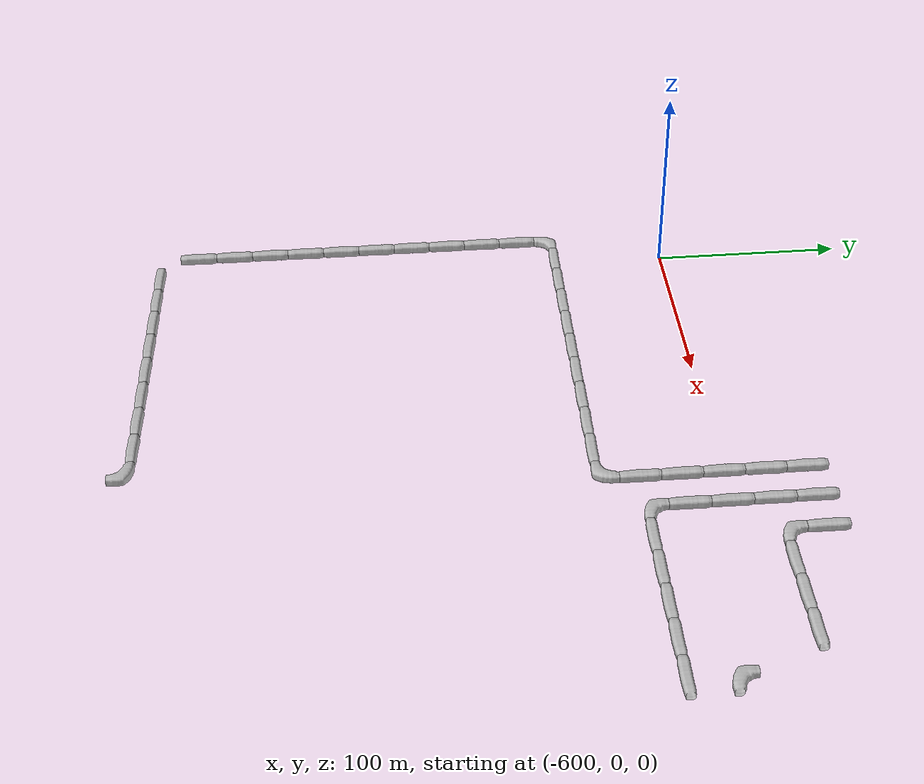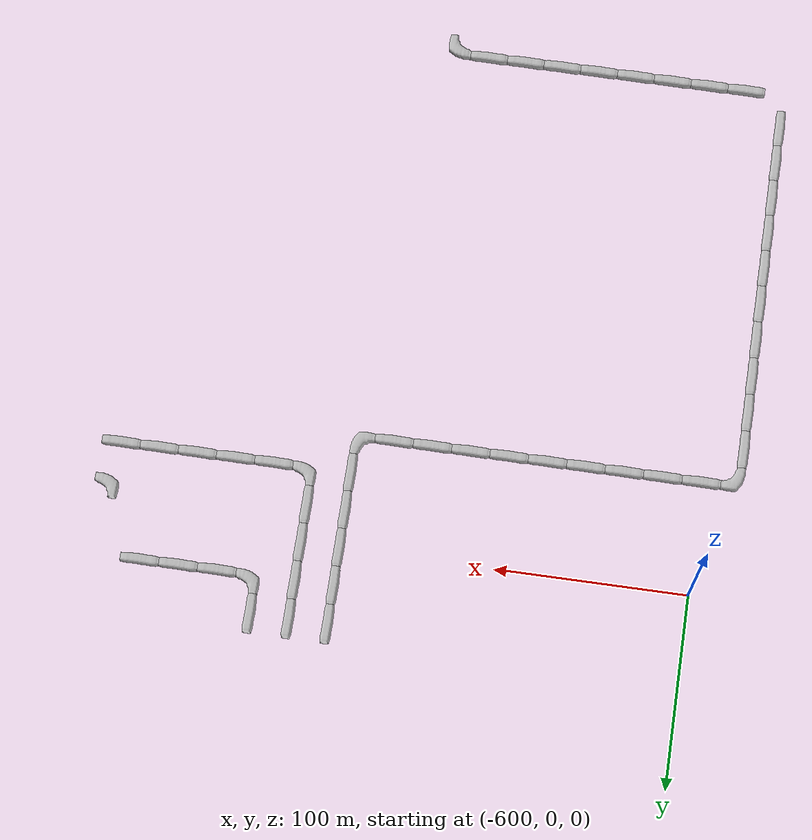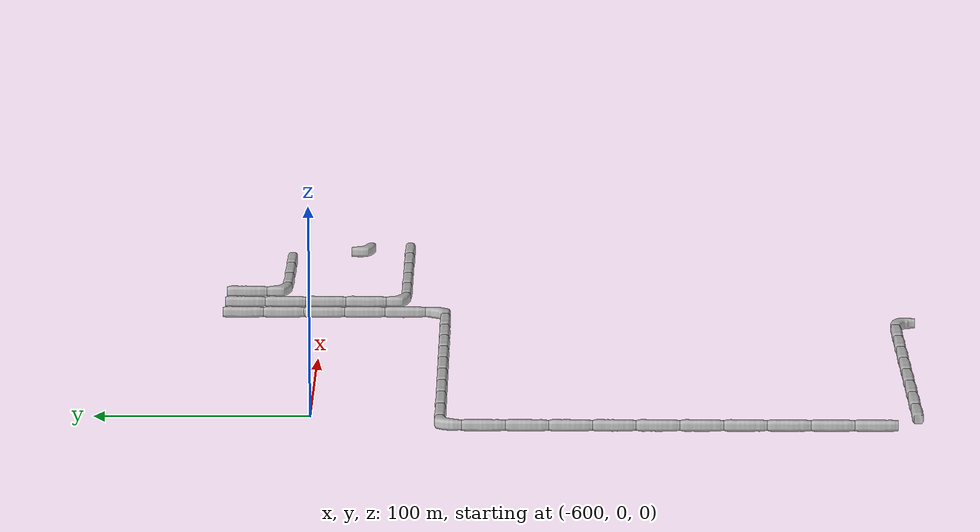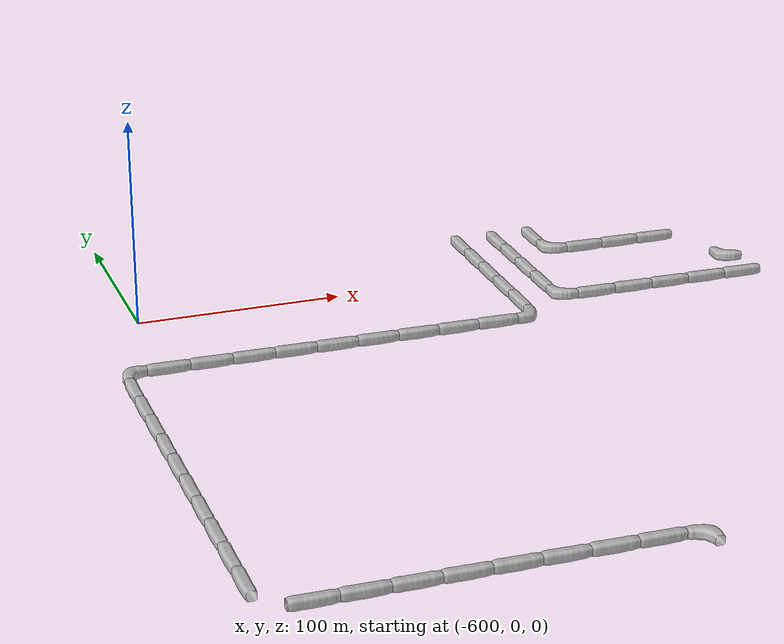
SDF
<sdf version="1.6">
 <world name="cave_16000_4">
  <include>
   <static>true</static>
   <name>cave_-22_-14</name>
   <pose>-440 -280 0 0 0 3.141592653589793</pose>
   <uri>model://cave_L_20m</uri>
  </include>
  <include>
   <static>true</static>
   <name>cave_-23_-14</name>
   <pose>-460 -280 0 0 0 1.5707963267948966</pose>
   <uri>model://cave_straight_20m</uri>
  </include>
  <include>
   <static>true</static>
   <name>cave_-24_-14</name>
   <pose>-480 -280 0 0 0 1.5707963267948966</pose>
   <uri>model://cave_straight_20m</uri>
  </include>
  <include>
   <static>true</static>
   <name>cave_-25_-14</name>
   <pose>-500 -280 0 0 0 1.5707963267948966</pose>
   <uri>model://cave_straight_20m</uri>
  </include>
  <include>
   <static>true</static>
   <name>cave_-26_-14</name>
   <pose>-520 -280 0 0 0 1.5707963267948966</pose>
   <uri>model://cave_straight_20m</uri>
  </include>
  <include>
   <static>true</static>
   <name>cave_-27_-14</name>
   <pose>-540 -280 0 0 0 1.5707963267948966</pose>
   <uri>model://cave_straight_20m</uri>
  </include>
  <include>
   <static>true</static>
   <name>cave_-28_-14</name>
   <pose>-560 -280 0 0 0 1.5707963267948966</pose>
   <uri>model://cave_straight_20m</uri>
  </include>
  <include>
   <static>true</static>
   <name>cave_-29_-14</name>
   <pose>-580 -280 0 0 0 1.5707963267948966</pose>
   <uri>model://cave_straight_20m</uri>
  </include>
  <include>
   <static>true</static>
   <name>cave_-30_-14</name>
   <pose>-600 -280 0 0 0 1.5707963267948966</pose>
   <uri>model://cave_straight_20m</uri>
  </include>
  <include>
   <static>true</static>
   <name>cave_-15_-1</name>
   <pose>-300 -20 0 0 0 0.0</pose>
   <uri>model://cave_L_20m</uri>
  </include>
  <include>
   <static>true</static>
   <name>cave_-19_2</name>
   <pose>-380 40 0 0 0 0.0</pose>
   <uri>model://cave_straight_20m</uri>
  </include>
  <include>
   <static>true</static>
   <name>cave_-19_1</name>
   <pose>-380 20 0 0 0 0.0</pose>
   <uri>model://cave_L_20m</uri>
  </include>
  <include>
   <static>true</static>
   <name>cave_-18_1</name>
   <pose>-360 20 0 0 0 1.5707963267948966</pose>
   <uri>model://cave_straight_20m</uri>
  </include>
  <include>
   <static>true</static>
   <name>cave_-17_1</name>
   <pose>-340 20 0 0 0 1.5707963267948966</pose>
   <uri>model://cave_straight_20m</uri>
  </include>
  <include>
   <static>true</static>
   <name>cave_-16_1</name>
   <pose>-320 20 0 0 0 1.5707963267948966</pose>
   <uri>model://cave_straight_20m</uri>
  </include>
  <include>
   <static>true</static>
   <name>cave_-20_2</name>
   <pose>-400 40 0 0 0 0.0</pose>
   <uri>model://cave_straight_20m</uri>
  </include>
  <include>
   <static>true</static>
   <name>cave_-20_1</name>
   <pose>-400 20 0 0 0 0.0</pose>
   <uri>model://cave_straight_20m</uri>
  </include>
  <include>
   <static>true</static>
   <name>cave_-20_0</name>
   <pose>-400 0 0 0 0 0.0</pose>
   <uri>model://cave_straight_20m</uri>
  </include>
  <include>
   <static>true</static>
   <name>cave_-20_-1</name>
   <pose>-400 -20 0 0 0 0.0</pose>
   <uri>model://cave_straight_20m</uri>
  </include>
  <include>
   <static>true</static>
   <name>cave_-20_-2</name>
   <pose>-400 -40 0 0 0 0.0</pose>
   <uri>model://cave_L_20m</uri>
  </include>
  <include>
   <static>true</static>
   <name>cave_-19_-2</name>
   <pose>-380 -40 0 0 0 1.5707963267948966</pose>
   <uri>model://cave_straight_20m</uri>
  </include>
  <include>
   <static>true</static>
   <name>cave_-18_-2</name>
   <pose>-360 -40 0 0 0 1.5707963267948966</pose>
   <uri>model://cave_straight_20m</uri>
  </include>
  <include>
   <static>true</static>
   <name>cave_-17_-2</name>
   <pose>-340 -40 0 0 0 1.5707963267948966</pose>
   <uri>model://cave_straight_20m</uri>
  </include>
  <include>
   <static>true</static>
   <name>cave_-16_-2</name>
   <pose>-320 -40 0 0 0 1.5707963267948966</pose>
   <uri>model://cave_straight_20m</uri>
  </include>
  <include>
   <static>true</static>
   <name>cave_-15_-2</name>
   <pose>-300 -40 0 0 0 1.5707963267948966</pose>
   <uri>model://cave_straight_20m</uri>
  </include>
  <include>
   <static>true</static>
   <name>cave_-21_2</name>
   <pose>-420 40 0 0 0 0.0</pose>
   <uri>model://cave_straight_20m</uri>
  </include>
  <include>
   <static>true</static>
   <name>cave_-21_1</name>
   <pose>-420 20 0 0 0 0.0</pose>
   <uri>model://cave_straight_20m</uri>
  </include>
  <include>
   <static>true</static>
   <name>cave_-21_0</name>
   <pose>-420 0 0 0 0 0.0</pose>
   <uri>model://cave_straight_20m</uri>
  </include>
  <include>
   <static>true</static>
   <name>cave_-21_-1</name>
   <pose>-420 -20 0 0 0 0.0</pose>
   <uri>model://cave_straight_20m</uri>
  </include>
  <include>
   <static>true</static>
   <name>cave_-21_-2</name>
   <pose>-420 -40 0 0 0 0.0</pose>
   <uri>model://cave_straight_20m</uri>
  </include>
  <include>
   <static>true</static>
   <name>cave_-21_-3</name>
   <pose>-420 -60 0 0 0 1.5707963267948966</pose>
   <uri>model://cave_L_20m</uri>
  </include>
  <include>
   <static>true</static>
   <name>cave_-22_-3</name>
   <pose>-440 -60 0 0 0 1.5707963267948966</pose>
   <uri>model://cave_straight_20m</uri>
  </include>
  <include>
   <static>true</static>
   <name>cave_-23_-3</name>
   <pose>-460 -60 0 0 0 1.5707963267948966</pose>
   <uri>model://cave_straight_20m</uri>
  </include>
  <include>
   <static>true</static>
   <name>cave_-24_-3</name>
   <pose>-480 -60 0 0 0 1.5707963267948966</pose>
   <uri>model://cave_straight_20m</uri>
  </include>
  <include>
   <static>true</static>
   <name>cave_-25_-3</name>
   <pose>-500 -60 0 0 0 1.5707963267948966</pose>
   <uri>model://cave_straight_20m</uri>
  </include>
  <include>
   <static>true</static>
   <name>cave_-26_-3</name>
   <pose>-520 -60 0 0 0 1.5707963267948966</pose>
   <uri>model://cave_straight_20m</uri>
  </include>
  <include>
   <static>true</static>
   <name>cave_-27_-3</name>
   <pose>-540 -60 0 0 0 1.5707963267948966</pose>
   <uri>model://cave_straight_20m</uri>
  </include>
  <include>
   <static>true</static>
   <name>cave_-28_-3</name>
   <pose>-560 -60 0 0 0 1.5707963267948966</pose>
   <uri>model://cave_straight_20m</uri>
  </include>
  <include>
   <static>true</static>
   <name>cave_-29_-3</name>
   <pose>-580 -60 0 0 0 1.5707963267948966</pose>
   <uri>model://cave_straight_20m</uri>
  </include>
  <include>
   <static>true</static>
   <name>cave_-30_-3</name>
   <pose>-600 -60 0 0 0 1.5707963267948966</pose>
   <uri>model://cave_straight_20m</uri>
  </include>
  <include>
   <static>true</static>
   <name>cave_-31_-3</name>
   <pose>-620 -60 0 0 0 -1.5707963267948966</pose>
   <uri>model://cave_L_20m</uri>
  </include>
  <include>
   <static>true</static>
   <name>cave_-31_-4</name>
   <pose>-620 -80 0 0 0 0.0</pose>
   <uri>model://cave_straight_20m</uri>
  </include>
  <include>
   <static>true</static>
   <name>cave_-31_-5</name>
   <pose>-620 -100 0 0 0 0.0</pose>
   <uri>model://cave_straight_20m</uri>
  </include>
  <include>
   <static>true</static>
   <name>cave_-31_-6</name>
   <pose>-620 -120 0 0 0 0.0</pose>
   <uri>model://cave_straight_20m</uri>
  </include>
  <include>
   <static>true</static>
   <name>cave_-31_-7</name>
   <pose>-620 -140 0 0 0 0.0</pose>
   <uri>model://cave_straight_20m</uri>
  </include>
  <include>
   <static>true</static>
   <name>cave_-31_-8</name>
   <pose>-620 -160 0 0 0 0.0</pose>
   <uri>model://cave_straight_20m</uri>
  </include>
  <include>
   <static>true</static>
   <name>cave_-31_-9</name>
   <pose>-620 -180 0 0 0 0.0</pose>
   <uri>model://cave_straight_20m</uri>
  </include>
  <include>
   <static>true</static>
   <name>cave_-31_-10</name>
   <pose>-620 -200 0 0 0 0.0</pose>
   <uri>model://cave_straight_20m</uri>
  </include>
  <include>
   <static>true</static>
   <name>cave_-31_-11</name>
   <pose>-620 -220 0 0 0 0.0</pose>
   <uri>model://cave_straight_20m</uri>
  </include>
  <include>
   <static>true</static>
   <name>cave_-31_-12</name>
   <pose>-620 -240 0 0 0 0.0</pose>
   <uri>model://cave_straight_20m</uri>
  </include>
  <include>
   <static>true</static>
   <name>cave_-31_-13</name>
   <pose>-620 -260 0 0 0 0.0</pose>
   <uri>model://cave_straight_20m</uri>
  </include>
 </world>
</sdf>
